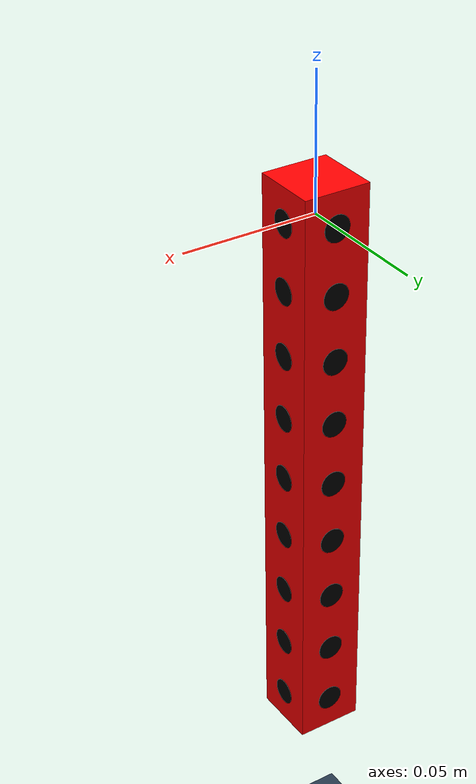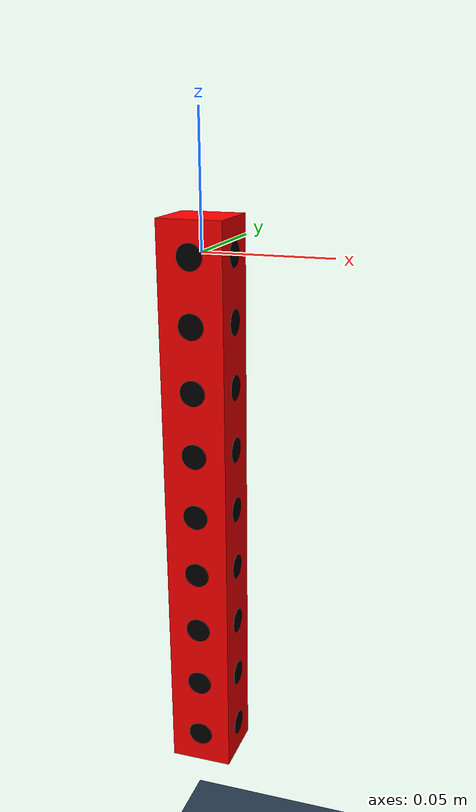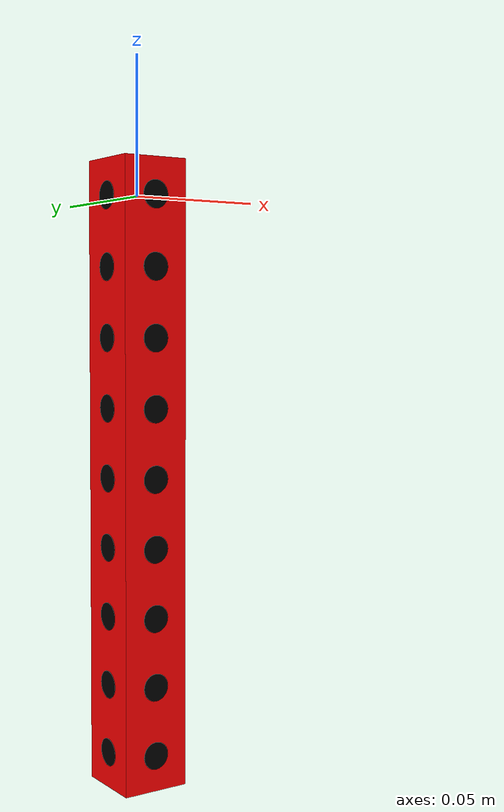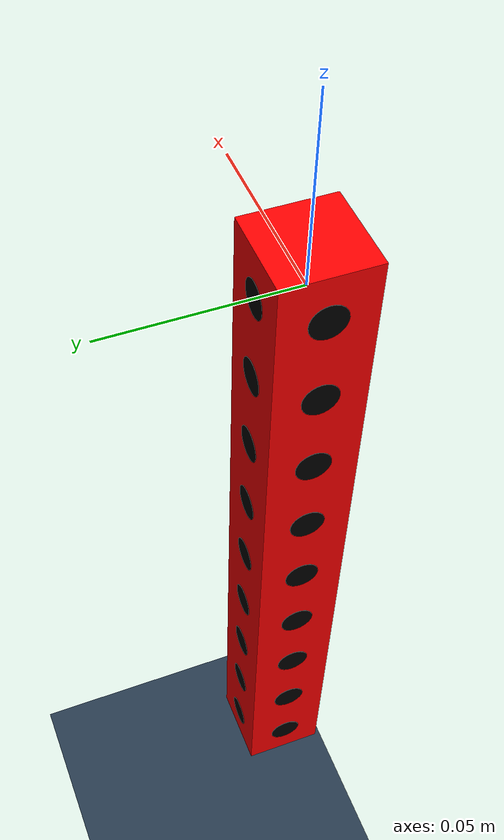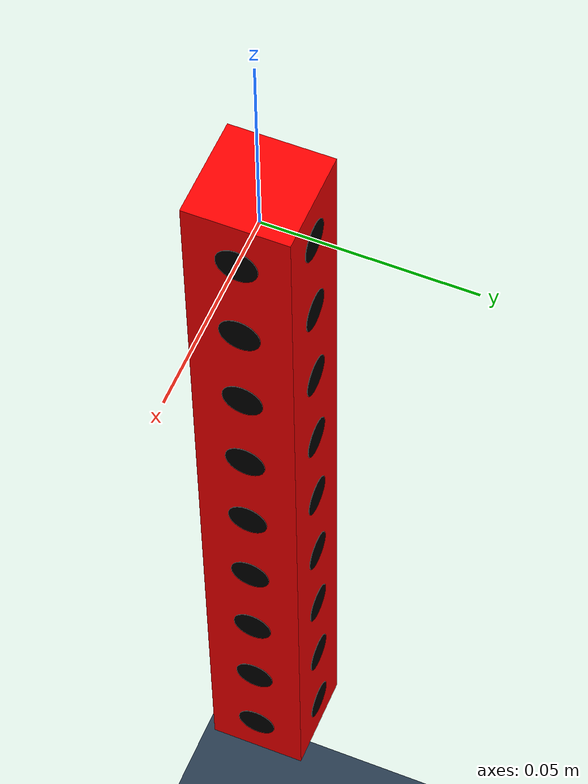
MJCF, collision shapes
<mujoco model="inverted pendulum">
	  <compiler meshdir="motor_stl/" eulerseq="zyx"/>

	 <asset>
		<mesh name="motor" file="motor.stl" scale="0.013 0.013 0.013"/>

      <texture type="skybox" builtin="gradient" rgb1="0.3 0.5 0.7" rgb2="0 0 0" width="512" height="512"/>
      <texture name="texplane" type="2d" builtin="checker" rgb1=".2 .3 .4" rgb2=".1 0.15 0.2"
          width="512" height="512" mark="cross" markrgb=".8 .8 .8"/>
      <texture name="texplane2" type="2d" builtin="checker" rgb1="1 0.3137 0.1843" rgb2="0.0 0.30196 0.38039"
          width="512" height="512" mark="cross" markrgb=".8 .8 .8"/>

      <material name="matplane" reflectance="0." texture="texplane" texrepeat="1 1" texuniform="true"/>
      <material name="matplane2" reflectance="0.1" texture="texplane2" texrepeat="1 1" texuniform="true"/>
      <hfield name='hf0' nrow='200' ncol='200' size="10 5 0.2 .1"/>
      </asset>
	<worldbody>
		<camera pos="0.341 0.212 0.077" xyaxes="-0.541 0.841 -0.000 -0.265 -0.171 0.949"/>
		<camera pos="0.132 0.136 0.068" xyaxes="-0.734 0.679 -0.000 -0.269 -0.291 0.918"/>

		<light directional="true" diffuse=".4 .4 .4" specular="0.1 0.1 0.1" pos="0 0 5.0" dir="0 0 -1" castshadow="false"/>
		<light directional="true" diffuse=".6 .6 .6" specular="0.2 0.2 0.2" pos="0 0 4" dir="0 0 -1"/>
		<geom name="ground" type="plane" size="0 0 1" pos="0.001 0 -0.3" quat="1 0 0 0" material="matplane" condim="1" conaffinity='15'/>
		<geom type="mesh" mesh="motor" pos="0 -0.07 0" euler="0 0 -90" contype="0" conaffinity="0" rgba="0.8 0.8 0.8 1"/>
        <body name="bar" pos="0 0 0">

			<joint axis="0 -1 0"
				name="hinge"
				pos="0 0 0"
				armature="0.0063871"
				frictionloss="0.17487545"
				damping="0.25193063"
				type="hinge" />

			<geom name="link_geom" type="box" size="0.0125 0.0125 0.113" pos="0 0 -0.1"
				rgba="1 0 0 1" contype="0" conaffinity="0" />

			<geom type="cylinder" size="0.005 0.0126" pos="0 0 0" euler="0 0 -90" rgba="0 0 0 1" contype="0" conaffinity="0"/>
			<geom type="cylinder" size="0.005 0.0126" pos="0 0 0" euler="90 0 -90" rgba="0 0 0 1" contype="0" conaffinity="0"/>

			<geom type="cylinder" size="0.005 0.0126" pos="0 0 -0.025" euler="0 0 -90" rgba="0 0 0 1" contype="0" conaffinity="0"/>
			<geom type="cylinder" size="0.005 0.0126" pos="0 0 -0.025" euler="90 0 -90" rgba="0 0 0 1" contype="0" conaffinity="0"/>

			<geom type="cylinder" size="0.005 0.0126" pos="0 0 -0.05" euler="0 0 -90" rgba="0 0 0 1" contype="0" conaffinity="0"/>
			<geom type="cylinder" size="0.005 0.0126" pos="0 0 -0.05" euler="90 0 -90" rgba="0 0 0 1" contype="0" conaffinity="0"/>

			<geom type="cylinder" size="0.005 0.0126" pos="0 0 -0.075" euler="0 0 -90" rgba="0 0 0 1" contype="0" conaffinity="0"/>
			<geom type="cylinder" size="0.005 0.0126" pos="0 0 -0.075" euler="90 0 -90" rgba="0 0 0 1" contype="0" conaffinity="0"/>

			<geom type="cylinder" size="0.005 0.0126" pos="0 0 -0.1" euler="0 0 -90" rgba="0 0 0 1" contype="0" conaffinity="0"/>
			<geom type="cylinder" size="0.005 0.0126" pos="0 0 -0.1" euler="90 0 -90" rgba="0 0 0 1" contype="0" conaffinity="0"/>

			<geom type="cylinder" size="0.005 0.0126" pos="0 0 -0.125" euler="0 0 -90" rgba="0 0 0 1" contype="0" conaffinity="0"/>
			<geom type="cylinder" size="0.005 0.0126" pos="0 0 -0.125" euler="90 0 -90" rgba="0 0 0 1" contype="0" conaffinity="0"/>

			<geom type="cylinder" size="0.005 0.0126" pos="0 0 -0.15" euler="0 0 -90" rgba="0 0 0 1" contype="0" conaffinity="0"/>
			<geom type="cylinder" size="0.005 0.0126" pos="0 0 -0.15" euler="90 0 -90" rgba="0 0 0 1" contype="0" conaffinity="0"/>

			<geom type="cylinder" size="0.005 0.0126" pos="0 0 -0.175" euler="0 0 -90" rgba="0 0 0 1" contype="0" conaffinity="0"/>
			<geom type="cylinder" size="0.005 0.0126" pos="0 0 -0.175" euler="90 0 -90" rgba="0 0 0 1" contype="0" conaffinity="0"/>

			<geom type="cylinder" size="0.005 0.0126" pos="0 0 -0.2" euler="0 0 -90" rgba="0 0 0 1" contype="0" conaffinity="0"/>
			<geom type="cylinder" size="0.005 0.0126" pos="0 0 -0.2" euler="90 0 -90" rgba="0 0 0 1" contype="0" conaffinity="0"/>

			<inertial
				pos="0 0 -0.1"
				mass="0.26"
				diaginertia="0.0011106333333333336  0.0011106333333333336 7.973333333333339e-06" />

		</body>
	</worldbody>
	<actuator>
		<motor ctrllimited="true" ctrlrange="-3 3" gear="1" joint="hinge" name="hinge"/>
	</actuator>
</mujoco>
